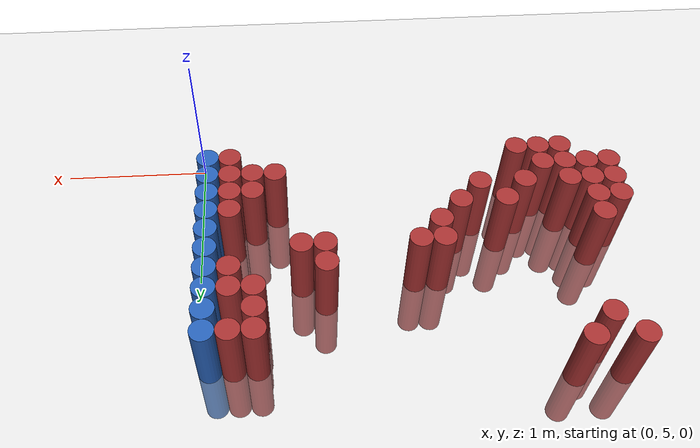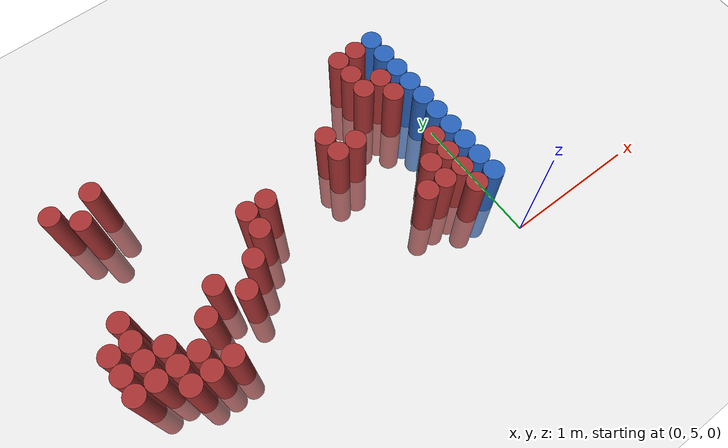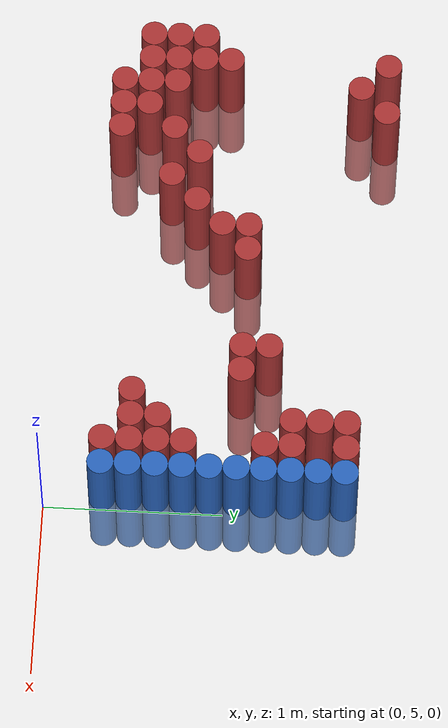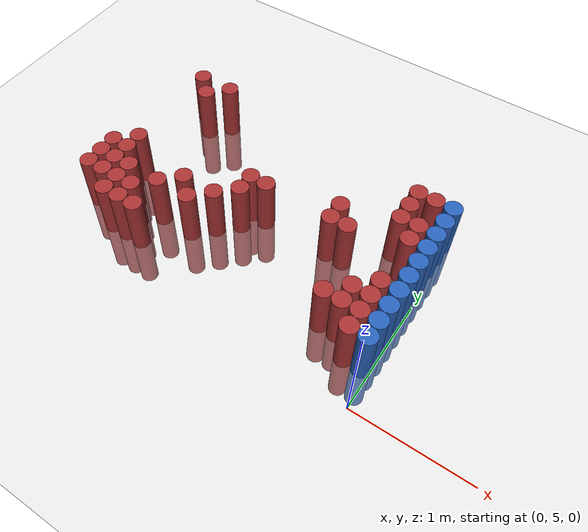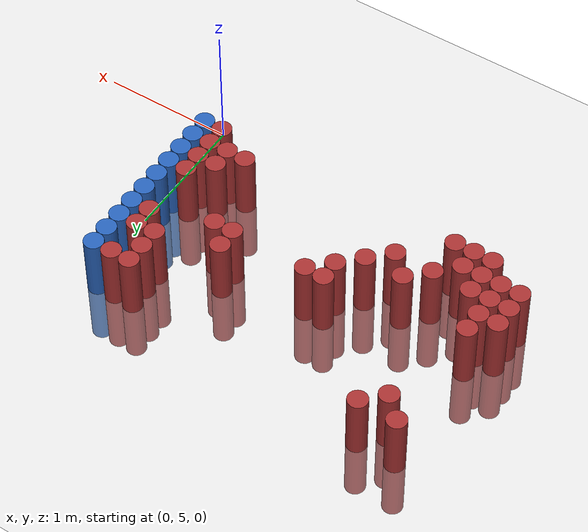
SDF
<sdf version="1.6">
 <world name="default">
  <model name="ground_plane">
   <static>1</static>
   <link name="link">
    <collision name="collision">
     <geometry><plane><normal>0 0 1</normal><size>100 100</size></plane></geometry>
     <surface><friction><ode><mu>100</mu><mu2>50</mu2></ode></friction></surface>
    </collision>
    <visual name="visual">
     <cast_shadows>0</cast_shadows>
     <geometry><plane><normal>0 0 1</normal><size>100 100</size></plane></geometry>
     <material>
      <script><uri>file://media/materials/scripts/gazebo.material</uri><name>Gazebo/Grey</name></script>
     </material>
    </visual>
   </link>
  </model>
  <model name="unit_cylinder_148">
   <static>1</static>
   <pose>-2.775000 5.475000 0.000000 0.000000 0.000000 0.000000</pose>
   <link name="link">
    <inertial>
     <mass>1</mass>
     <inertia><ixx>0.145833</ixx><ixy>0</ixy><ixz>0</ixz><iyy>0.145833</iyy><iyz>0</iyz><izz>0.125</izz></inertia>
    </inertial>
    <collision name="collision">
     <geometry><cylinder><radius>0.075000</radius><length>1</length></cylinder></geometry>
    </collision>
    <visual name="visual">
     <geometry><cylinder><radius>0.075000</radius><length>1</length></cylinder></geometry>
     <material>
      <ambient>0.648000 0.192000 0.192000 1</ambient>
      <diffuse>0.648000 0.192000 0.192000 1</diffuse>
     </material>
     <material>
      <script><name>Gazebo/Grey</name><uri>file://media/materials/scripts/gazebo.material</uri></script>
     </material>
    </visual>
   </link>
  </model>
  <model name="unit_cylinder_149">
   <static>1</static>
   <pose>-2.775000 5.625000 0.000000 0.000000 0.000000 0.000000</pose>
   <link name="link">
    <inertial>
     <mass>1</mass>
     <inertia><ixx>0.145833</ixx><ixy>0</ixy><ixz>0</ixz><iyy>0.145833</iyy><iyz>0</iyz><izz>0.125</izz></inertia>
    </inertial>
    <collision name="collision">
     <geometry><cylinder><radius>0.075000</radius><length>1</length></cylinder></geometry>
    </collision>
    <visual name="visual">
     <geometry><cylinder><radius>0.075000</radius><length>1</length></cylinder></geometry>
     <material>
      <ambient>0.648000 0.192000 0.192000 1</ambient>
      <diffuse>0.648000 0.192000 0.192000 1</diffuse>
     </material>
     <material>
      <script><name>Gazebo/Grey</name><uri>file://media/materials/scripts/gazebo.material</uri></script>
     </material>
    </visual>
   </link>
  </model>
  <model name="unit_cylinder_150">
   <static>1</static>
   <pose>-2.775000 5.775000 0.000000 0.000000 0.000000 0.000000</pose>
   <link name="link">
    <inertial>
     <mass>1</mass>
     <inertia><ixx>0.145833</ixx><ixy>0</ixy><ixz>0</ixz><iyy>0.145833</iyy><iyz>0</iyz><izz>0.125</izz></inertia>
    </inertial>
    <collision name="collision">
     <geometry><cylinder><radius>0.075000</radius><length>1</length></cylinder></geometry>
    </collision>
    <visual name="visual">
     <geometry><cylinder><radius>0.075000</radius><length>1</length></cylinder></geometry>
     <material>
      <ambient>0.648000 0.192000 0.192000 1</ambient>
      <diffuse>0.648000 0.192000 0.192000 1</diffuse>
     </material>
     <material>
      <script><name>Gazebo/Grey</name><uri>file://media/materials/scripts/gazebo.material</uri></script>
     </material>
    </visual>
   </link>
  </model>
  <model name="unit_cylinder_151">
   <static>1</static>
   <pose>-2.625000 5.475000 0.000000 0.000000 0.000000 0.000000</pose>
   <link name="link">
    <inertial>
     <mass>1</mass>
     <inertia><ixx>0.145833</ixx><ixy>0</ixy><ixz>0</ixz><iyy>0.145833</iyy><iyz>0</iyz><izz>0.125</izz></inertia>
    </inertial>
    <collision name="collision">
     <geometry><cylinder><radius>0.075000</radius><length>1</length></cylinder></geometry>
    </collision>
    <visual name="visual">
     <geometry><cylinder><radius>0.075000</radius><length>1</length></cylinder></geometry>
     <material>
      <ambient>0.648000 0.192000 0.192000 1</ambient>
      <diffuse>0.648000 0.192000 0.192000 1</diffuse>
     </material>
     <material>
      <script><name>Gazebo/Grey</name><uri>file://media/materials/scripts/gazebo.material</uri></script>
     </material>
    </visual>
   </link>
  </model>
  <model name="unit_cylinder_152">
   <static>1</static>
   <pose>-2.625000 5.625000 0.000000 0.000000 0.000000 0.000000</pose>
   <link name="link">
    <inertial>
     <mass>1</mass>
     <inertia><ixx>0.145833</ixx><ixy>0</ixy><ixz>0</ixz><iyy>0.145833</iyy><iyz>0</iyz><izz>0.125</izz></inertia>
    </inertial>
    <collision name="collision">
     <geometry><cylinder><radius>0.075000</radius><length>1</length></cylinder></geometry>
    </collision>
    <visual name="visual">
     <geometry><cylinder><radius>0.075000</radius><length>1</length></cylinder></geometry>
     <material>
      <ambient>0.648000 0.192000 0.192000 1</ambient>
      <diffuse>0.648000 0.192000 0.192000 1</diffuse>
     </material>
     <material>
      <script><name>Gazebo/Grey</name><uri>file://media/materials/scripts/gazebo.material</uri></script>
     </material>
    </visual>
   </link>
  </model>
  <model name="unit_cylinder_153">
   <static>1</static>
   <pose>-2.625000 5.775000 0.000000 0.000000 0.000000 0.000000</pose>
   <link name="link">
    <inertial>
     <mass>1</mass>
     <inertia><ixx>0.145833</ixx><ixy>0</ixy><ixz>0</ixz><iyy>0.145833</iyy><iyz>0</iyz><izz>0.125</izz></inertia>
    </inertial>
    <collision name="collision">
     <geometry><cylinder><radius>0.075000</radius><length>1</length></cylinder></geometry>
    </collision>
    <visual name="visual">
     <geometry><cylinder><radius>0.075000</radius><length>1</length></cylinder></geometry>
     <material>
      <ambient>0.648000 0.192000 0.192000 1</ambient>
      <diffuse>0.648000 0.192000 0.192000 1</diffuse>
     </material>
     <material>
      <script><name>Gazebo/Grey</name><uri>file://media/materials/scripts/gazebo.material</uri></script>
     </material>
    </visual>
   </link>
  </model>
  <model name="unit_cylinder_154">
   <static>1</static>
   <pose>-2.625000 5.925000 0.000000 0.000000 0.000000 0.000000</pose>
   <link name="link">
    <inertial>
     <mass>1</mass>
     <inertia><ixx>0.145833</ixx><ixy>0</ixy><ixz>0</ixz><iyy>0.145833</iyy><iyz>0</iyz><izz>0.125</izz></inertia>
    </inertial>
    <collision name="collision">
     <geometry><cylinder><radius>0.075000</radius><length>1</length></cylinder></geometry>
    </collision>
    <visual name="visual">
     <geometry><cylinder><radius>0.075000</radius><length>1</length></cylinder></geometry>
     <material>
      <ambient>0.648000 0.192000 0.192000 1</ambient>
      <diffuse>0.648000 0.192000 0.192000 1</diffuse>
     </material>
     <material>
      <script><name>Gazebo/Grey</name><uri>file://media/materials/scripts/gazebo.material</uri></script>
     </material>
    </visual>
   </link>
  </model>
  <model name="unit_cylinder_155">
   <static>1</static>
   <pose>-2.625000 6.825000 0.000000 0.000000 0.000000 0.000000</pose>
   <link name="link">
    <inertial>
     <mass>1</mass>
     <inertia><ixx>0.145833</ixx><ixy>0</ixy><ixz>0</ixz><iyy>0.145833</iyy><iyz>0</iyz><izz>0.125</izz></inertia>
    </inertial>
    <collision name="collision">
     <geometry><cylinder><radius>0.075000</radius><length>1</length></cylinder></geometry>
    </collision>
    <visual name="visual">
     <geometry><cylinder><radius>0.075000</radius><length>1</length></cylinder></geometry>
     <material>
      <ambient>0.648000 0.192000 0.192000 1</ambient>
      <diffuse>0.648000 0.192000 0.192000 1</diffuse>
     </material>
     <material>
      <script><name>Gazebo/Grey</name><uri>file://media/materials/scripts/gazebo.material</uri></script>
     </material>
    </visual>
   </link>
  </model>
  <model name="unit_cylinder_156">
   <static>1</static>
   <pose>-2.475000 5.325000 0.000000 0.000000 0.000000 0.000000</pose>
   <link name="link">
    <inertial>
     <mass>1</mass>
     <inertia><ixx>0.145833</ixx><ixy>0</ixy><ixz>0</ixz><iyy>0.145833</iyy><iyz>0</iyz><izz>0.125</izz></inertia>
    </inertial>
    <collision name="collision">
     <geometry><cylinder><radius>0.075000</radius><length>1</length></cylinder></geometry>
    </collision>
    <visual name="visual">
     <geometry><cylinder><radius>0.075000</radius><length>1</length></cylinder></geometry>
     <material>
      <ambient>0.648000 0.192000 0.192000 1</ambient>
      <diffuse>0.648000 0.192000 0.192000 1</diffuse>
     </material>
     <material>
      <script><name>Gazebo/Grey</name><uri>file://media/materials/scripts/gazebo.material</uri></script>
     </material>
    </visual>
   </link>
  </model>
  <model name="unit_cylinder_157">
   <static>1</static>
   <pose>-2.475000 5.475000 0.000000 0.000000 0.000000 0.000000</pose>
   <link name="link">
    <inertial>
     <mass>1</mass>
     <inertia><ixx>0.145833</ixx><ixy>0</ixy><ixz>0</ixz><iyy>0.145833</iyy><iyz>0</iyz><izz>0.125</izz></inertia>
    </inertial>
    <collision name="collision">
     <geometry><cylinder><radius>0.075000</radius><length>1</length></cylinder></geometry>
    </collision>
    <visual name="visual">
     <geometry><cylinder><radius>0.075000</radius><length>1</length></cylinder></geometry>
     <material>
      <ambient>0.648000 0.192000 0.192000 1</ambient>
      <diffuse>0.648000 0.192000 0.192000 1</diffuse>
     </material>
     <material>
      <script><name>Gazebo/Grey</name><uri>file://media/materials/scripts/gazebo.material</uri></script>
     </material>
    </visual>
   </link>
  </model>
  <model name="unit_cylinder_158">
   <static>1</static>
   <pose>-2.475000 5.625000 0.000000 0.000000 0.000000 0.000000</pose>
   <link name="link">
    <inertial>
     <mass>1</mass>
     <inertia><ixx>0.145833</ixx><ixy>0</ixy><ixz>0</ixz><iyy>0.145833</iyy><iyz>0</iyz><izz>0.125</izz></inertia>
    </inertial>
    <collision name="collision">
     <geometry><cylinder><radius>0.075000</radius><length>1</length></cylinder></geometry>
    </collision>
    <visual name="visual">
     <geometry><cylinder><radius>0.075000</radius><length>1</length></cylinder></geometry>
     <material>
      <ambient>0.648000 0.192000 0.192000 1</ambient>
      <diffuse>0.648000 0.192000 0.192000 1</diffuse>
     </material>
     <material>
      <script><name>Gazebo/Grey</name><uri>file://media/materials/scripts/gazebo.material</uri></script>
     </material>
    </visual>
   </link>
  </model>
  <model name="unit_cylinder_159">
   <static>1</static>
   <pose>-2.475000 6.675000 0.000000 0.000000 0.000000 0.000000</pose>
   <link name="link">
    <inertial>
     <mass>1</mass>
     <inertia><ixx>0.145833</ixx><ixy>0</ixy><ixz>0</ixz><iyy>0.145833</iyy><iyz>0</iyz><izz>0.125</izz></inertia>
    </inertial>
    <collision name="collision">
     <geometry><cylinder><radius>0.075000</radius><length>1</length></cylinder></geometry>
    </collision>
    <visual name="visual">
     <geometry><cylinder><radius>0.075000</radius><length>1</length></cylinder></geometry>
     <material>
      <ambient>0.648000 0.192000 0.192000 1</ambient>
      <diffuse>0.648000 0.192000 0.192000 1</diffuse>
     </material>
     <material>
      <script><name>Gazebo/Grey</name><uri>file://media/materials/scripts/gazebo.material</uri></script>
     </material>
    </visual>
   </link>
  </model>
  <model name="unit_cylinder_162">
   <static>1</static>
   <pose>-2.325000 5.325000 0.000000 0.000000 0.000000 0.000000</pose>
   <link name="link">
    <inertial>
     <mass>1</mass>
     <inertia><ixx>0.145833</ixx><ixy>0</ixy><ixz>0</ixz><iyy>0.145833</iyy><iyz>0</iyz><izz>0.125</izz></inertia>
    </inertial>
    <collision name="collision">
     <geometry><cylinder><radius>0.075000</radius><length>1</length></cylinder></geometry>
    </collision>
    <visual name="visual">
     <geometry><cylinder><radius>0.075000</radius><length>1</length></cylinder></geometry>
     <material>
      <ambient>0.648000 0.192000 0.192000 1</ambient>
      <diffuse>0.648000 0.192000 0.192000 1</diffuse>
     </material>
     <material>
      <script><name>Gazebo/Grey</name><uri>file://media/materials/scripts/gazebo.material</uri></script>
     </material>
    </visual>
   </link>
  </model>
  <model name="unit_cylinder_163">
   <static>1</static>
   <pose>-2.325000 5.475000 0.000000 0.000000 0.000000 0.000000</pose>
   <link name="link">
    <inertial>
     <mass>1</mass>
     <inertia><ixx>0.145833</ixx><ixy>0</ixy><ixz>0</ixz><iyy>0.145833</iyy><iyz>0</iyz><izz>0.125</izz></inertia>
    </inertial>
    <collision name="collision">
     <geometry><cylinder><radius>0.075000</radius><length>1</length></cylinder></geometry>
    </collision>
    <visual name="visual">
     <geometry><cylinder><radius>0.075000</radius><length>1</length></cylinder></geometry>
     <material>
      <ambient>0.648000 0.192000 0.192000 1</ambient>
      <diffuse>0.648000 0.192000 0.192000 1</diffuse>
     </material>
     <material>
      <script><name>Gazebo/Grey</name><uri>file://media/materials/scripts/gazebo.material</uri></script>
     </material>
    </visual>
   </link>
  </model>
  <model name="unit_cylinder_164">
   <static>1</static>
   <pose>-2.325000 6.825000 0.000000 0.000000 0.000000 0.000000</pose>
   <link name="link">
    <inertial>
     <mass>1</mass>
     <inertia><ixx>0.145833</ixx><ixy>0</ixy><ixz>0</ixz><iyy>0.145833</iyy><iyz>0</iyz><izz>0.125</izz></inertia>
    </inertial>
    <collision name="collision">
     <geometry><cylinder><radius>0.075000</radius><length>1</length></cylinder></geometry>
    </collision>
    <visual name="visual">
     <geometry><cylinder><radius>0.075000</radius><length>1</length></cylinder></geometry>
     <material>
      <ambient>0.648000 0.192000 0.192000 1</ambient>
      <diffuse>0.648000 0.192000 0.192000 1</diffuse>
     </material>
     <material>
      <script><name>Gazebo/Grey</name><uri>file://media/materials/scripts/gazebo.material</uri></script>
     </material>
    </visual>
   </link>
  </model>
  <model name="unit_cylinder_168">
   <static>1</static>
   <pose>-2.175000 5.325000 0.000000 0.000000 0.000000 0.000000</pose>
   <link name="link">
    <inertial>
     <mass>1</mass>
     <inertia><ixx>0.145833</ixx><ixy>0</ixy><ixz>0</ixz><iyy>0.145833</iyy><iyz>0</iyz><izz>0.125</izz></inertia>
    </inertial>
    <collision name="collision">
     <geometry><cylinder><radius>0.075000</radius><length>1</length></cylinder></geometry>
    </collision>
    <visual name="visual">
     <geometry><cylinder><radius>0.075000</radius><length>1</length></cylinder></geometry>
     <material>
      <ambient>0.648000 0.192000 0.192000 1</ambient>
      <diffuse>0.648000 0.192000 0.192000 1</diffuse>
     </material>
     <material>
      <script><name>Gazebo/Grey</name><uri>file://media/materials/scripts/gazebo.material</uri></script>
     </material>
    </visual>
   </link>
  </model>
  <model name="unit_cylinder_169">
   <static>1</static>
   <pose>-2.175000 5.625000 0.000000 0.000000 0.000000 0.000000</pose>
   <link name="link">
    <inertial>
     <mass>1</mass>
     <inertia><ixx>0.145833</ixx><ixy>0</ixy><ixz>0</ixz><iyy>0.145833</iyy><iyz>0</iyz><izz>0.125</izz></inertia>
    </inertial>
    <collision name="collision">
     <geometry><cylinder><radius>0.075000</radius><length>1</length></cylinder></geometry>
    </collision>
    <visual name="visual">
     <geometry><cylinder><radius>0.075000</radius><length>1</length></cylinder></geometry>
     <material>
      <ambient>0.648000 0.192000 0.192000 1</ambient>
      <diffuse>0.648000 0.192000 0.192000 1</diffuse>
     </material>
     <material>
      <script><name>Gazebo/Grey</name><uri>file://media/materials/scripts/gazebo.material</uri></script>
     </material>
    </visual>
   </link>
  </model>
  <model name="unit_cylinder_174">
   <static>1</static>
   <pose>-2.025000 5.775000 0.000000 0.000000 0.000000 0.000000</pose>
   <link name="link">
    <inertial>
     <mass>1</mass>
     <inertia><ixx>0.145833</ixx><ixy>0</ixy><ixz>0</ixz><iyy>0.145833</iyy><iyz>0</iyz><izz>0.125</izz></inertia>
    </inertial>
    <collision name="collision">
     <geometry><cylinder><radius>0.075000</radius><length>1</length></cylinder></geometry>
    </collision>
    <visual name="visual">
     <geometry><cylinder><radius>0.075000</radius><length>1</length></cylinder></geometry>
     <material>
      <ambient>0.648000 0.192000 0.192000 1</ambient>
      <diffuse>0.648000 0.192000 0.192000 1</diffuse>
     </material>
     <material>
      <script><name>Gazebo/Grey</name><uri>file://media/materials/scripts/gazebo.material</uri></script>
     </material>
    </visual>
   </link>
  </model>
  <model name="unit_cylinder_178">
   <static>1</static>
   <pose>-1.875000 5.625000 0.000000 0.000000 0.000000 0.000000</pose>
   <link name="link">
    <inertial>
     <mass>1</mass>
     <inertia><ixx>0.145833</ixx><ixy>0</ixy><ixz>0</ixz><iyy>0.145833</iyy><iyz>0</iyz><izz>0.125</izz></inertia>
    </inertial>
    <collision name="collision">
     <geometry><cylinder><radius>0.075000</radius><length>1</length></cylinder></geometry>
    </collision>
    <visual name="visual">
     <geometry><cylinder><radius>0.075000</radius><length>1</length></cylinder></geometry>
     <material>
      <ambient>0.648000 0.192000 0.192000 1</ambient>
      <diffuse>0.648000 0.192000 0.192000 1</diffuse>
     </material>
     <material>
      <script><name>Gazebo/Grey</name><uri>file://media/materials/scripts/gazebo.material</uri></script>
     </material>
    </visual>
   </link>
  </model>
  <model name="unit_cylinder_180">
   <static>1</static>
   <pose>-1.725000 5.775000 0.000000 0.000000 0.000000 0.000000</pose>
   <link name="link">
    <inertial>
     <mass>1</mass>
     <inertia><ixx>0.145833</ixx><ixy>0</ixy><ixz>0</ixz><iyy>0.145833</iyy><iyz>0</iyz><izz>0.125</izz></inertia>
    </inertial>
    <collision name="collision">
     <geometry><cylinder><radius>0.075000</radius><length>1</length></cylinder></geometry>
    </collision>
    <visual name="visual">
     <geometry><cylinder><radius>0.075000</radius><length>1</length></cylinder></geometry>
     <material>
      <ambient>0.648000 0.192000 0.192000 1</ambient>
      <diffuse>0.648000 0.192000 0.192000 1</diffuse>
     </material>
     <material>
      <script><name>Gazebo/Grey</name><uri>file://media/materials/scripts/gazebo.material</uri></script>
     </material>
    </visual>
   </link>
  </model>
  <model name="unit_cylinder_182">
   <static>1</static>
   <pose>-1.575000 5.925000 0.000000 0.000000 0.000000 0.000000</pose>
   <link name="link">
    <inertial>
     <mass>1</mass>
     <inertia><ixx>0.145833</ixx><ixy>0</ixy><ixz>0</ixz><iyy>0.145833</iyy><iyz>0</iyz><izz>0.125</izz></inertia>
    </inertial>
    <collision name="collision">
     <geometry><cylinder><radius>0.075000</radius><length>1</length></cylinder></geometry>
    </collision>
    <visual name="visual">
     <geometry><cylinder><radius>0.075000</radius><length>1</length></cylinder></geometry>
     <material>
      <ambient>0.648000 0.192000 0.192000 1</ambient>
      <diffuse>0.648000 0.192000 0.192000 1</diffuse>
     </material>
     <material>
      <script><name>Gazebo/Grey</name><uri>file://media/materials/scripts/gazebo.material</uri></script>
     </material>
    </visual>
   </link>
  </model>
  <model name="unit_cylinder_183">
   <static>1</static>
   <pose>-1.575000 6.075000 0.000000 0.000000 0.000000 0.000000</pose>
   <link name="link">
    <inertial>
     <mass>1</mass>
     <inertia><ixx>0.145833</ixx><ixy>0</ixy><ixz>0</ixz><iyy>0.145833</iyy><iyz>0</iyz><izz>0.125</izz></inertia>
    </inertial>
    <collision name="collision">
     <geometry><cylinder><radius>0.075000</radius><length>1</length></cylinder></geometry>
    </collision>
    <visual name="visual">
     <geometry><cylinder><radius>0.075000</radius><length>1</length></cylinder></geometry>
     <material>
      <ambient>0.648000 0.192000 0.192000 1</ambient>
      <diffuse>0.648000 0.192000 0.192000 1</diffuse>
     </material>
     <material>
      <script><name>Gazebo/Grey</name><uri>file://media/materials/scripts/gazebo.material</uri></script>
     </material>
    </visual>
   </link>
  </model>
  <model name="unit_cylinder_186">
   <static>1</static>
   <pose>-1.425000 6.075000 0.000000 0.000000 0.000000 0.000000</pose>
   <link name="link">
    <inertial>
     <mass>1</mass>
     <inertia><ixx>0.145833</ixx><ixy>0</ixy><ixz>0</ixz><iyy>0.145833</iyy><iyz>0</iyz><izz>0.125</izz></inertia>
    </inertial>
    <collision name="collision">
     <geometry><cylinder><radius>0.075000</radius><length>1</length></cylinder></geometry>
    </collision>
    <visual name="visual">
     <geometry><cylinder><radius>0.075000</radius><length>1</length></cylinder></geometry>
     <material>
      <ambient>0.648000 0.192000 0.192000 1</ambient>
      <diffuse>0.648000 0.192000 0.192000 1</diffuse>
     </material>
     <material>
      <script><name>Gazebo/Grey</name><uri>file://media/materials/scripts/gazebo.material</uri></script>
     </material>
    </visual>
   </link>
  </model>
  <model name="unit_cylinder_190">
   <static>1</static>
   <pose>-0.825000 6.075000 0.000000 0.000000 0.000000 0.000000</pose>
   <link name="link">
    <inertial>
     <mass>1</mass>
     <inertia><ixx>0.145833</ixx><ixy>0</ixy><ixz>0</ixz><iyy>0.145833</iyy><iyz>0</iyz><izz>0.125</izz></inertia>
    </inertial>
    <collision name="collision">
     <geometry><cylinder><radius>0.075000</radius><length>1</length></cylinder></geometry>
    </collision>
    <visual name="visual">
     <geometry><cylinder><radius>0.075000</radius><length>1</length></cylinder></geometry>
     <material>
      <ambient>0.648000 0.192000 0.192000 1</ambient>
      <diffuse>0.648000 0.192000 0.192000 1</diffuse>
     </material>
     <material>
      <script><name>Gazebo/Grey</name><uri>file://media/materials/scripts/gazebo.material</uri></script>
     </material>
    </visual>
   </link>
  </model>
  <model name="unit_cylinder_191">
   <static>1</static>
   <pose>-0.825000 6.225000 0.000000 0.000000 0.000000 0.000000</pose>
   <link name="link">
    <inertial>
     <mass>1</mass>
     <inertia><ixx>0.145833</ixx><ixy>0</ixy><ixz>0</ixz><iyy>0.145833</iyy><iyz>0</iyz><izz>0.125</izz></inertia>
    </inertial>
    <collision name="collision">
     <geometry><cylinder><radius>0.075000</radius><length>1</length></cylinder></geometry>
    </collision>
    <visual name="visual">
     <geometry><cylinder><radius>0.075000</radius><length>1</length></cylinder></geometry>
     <material>
      <ambient>0.648000 0.192000 0.192000 1</ambient>
      <diffuse>0.648000 0.192000 0.192000 1</diffuse>
     </material>
     <material>
      <script><name>Gazebo/Grey</name><uri>file://media/materials/scripts/gazebo.material</uri></script>
     </material>
    </visual>
   </link>
  </model>
  <model name="unit_cylinder_193">
   <static>1</static>
   <pose>-0.675000 6.075000 0.000000 0.000000 0.000000 0.000000</pose>
   <link name="link">
    <inertial>
     <mass>1</mass>
     <inertia><ixx>0.145833</ixx><ixy>0</ixy><ixz>0</ixz><iyy>0.145833</iyy><iyz>0</iyz><izz>0.125</izz></inertia>
    </inertial>
    <collision name="collision">
     <geometry><cylinder><radius>0.075000</radius><length>1</length></cylinder></geometry>
    </collision>
    <visual name="visual">
     <geometry><cylinder><radius>0.075000</radius><length>1</length></cylinder></geometry>
     <material>
      <ambient>0.648000 0.192000 0.192000 1</ambient>
      <diffuse>0.648000 0.192000 0.192000 1</diffuse>
     </material>
     <material>
      <script><name>Gazebo/Grey</name><uri>file://media/materials/scripts/gazebo.material</uri></script>
     </material>
    </visual>
   </link>
  </model>
  <model name="unit_cylinder_196">
   <static>1</static>
   <pose>-0.525000 5.475000 0.000000 0.000000 0.000000 0.000000</pose>
   <link name="link">
    <inertial>
     <mass>1</mass>
     <inertia><ixx>0.145833</ixx><ixy>0</ixy><ixz>0</ixz><iyy>0.145833</iyy><iyz>0</iyz><izz>0.125</izz></inertia>
    </inertial>
    <collision name="collision">
     <geometry><cylinder><radius>0.075000</radius><length>1</length></cylinder></geometry>
    </collision>
    <visual name="visual">
     <geometry><cylinder><radius>0.075000</radius><length>1</length></cylinder></geometry>
     <material>
      <ambient>0.648000 0.192000 0.192000 1</ambient>
      <diffuse>0.648000 0.192000 0.192000 1</diffuse>
     </material>
     <material>
      <script><name>Gazebo/Grey</name><uri>file://media/materials/scripts/gazebo.material</uri></script>
     </material>
    </visual>
   </link>
  </model>
  <model name="unit_cylinder_197">
   <static>1</static>
   <pose>-0.375000 5.475000 0.000000 0.000000 0.000000 0.000000</pose>
   <link name="link">
    <inertial>
     <mass>1</mass>
     <inertia><ixx>0.145833</ixx><ixy>0</ixy><ixz>0</ixz><iyy>0.145833</iyy><iyz>0</iyz><izz>0.125</izz></inertia>
    </inertial>
    <collision name="collision">
     <geometry><cylinder><radius>0.075000</radius><length>1</length></cylinder></geometry>
    </collision>
    <visual name="visual">
     <geometry><cylinder><radius>0.075000</radius><length>1</length></cylinder></geometry>
     <material>
      <ambient>0.648000 0.192000 0.192000 1</ambient>
      <diffuse>0.648000 0.192000 0.192000 1</diffuse>
     </material>
     <material>
      <script><name>Gazebo/Grey</name><uri>file://media/materials/scripts/gazebo.material</uri></script>
     </material>
    </visual>
   </link>
  </model>
  <model name="unit_cylinder_198">
   <static>1</static>
   <pose>-0.375000 5.625000 0.000000 0.000000 0.000000 0.000000</pose>
   <link name="link">
    <inertial>
     <mass>1</mass>
     <inertia><ixx>0.145833</ixx><ixy>0</ixy><ixz>0</ixz><iyy>0.145833</iyy><iyz>0</iyz><izz>0.125</izz></inertia>
    </inertial>
    <collision name="collision">
     <geometry><cylinder><radius>0.075000</radius><length>1</length></cylinder></geometry>
    </collision>
    <visual name="visual">
     <geometry><cylinder><radius>0.075000</radius><length>1</length></cylinder></geometry>
     <material>
      <ambient>0.648000 0.192000 0.192000 1</ambient>
      <diffuse>0.648000 0.192000 0.192000 1</diffuse>
     </material>
     <material>
      <script><name>Gazebo/Grey</name><uri>file://media/materials/scripts/gazebo.material</uri></script>
     </material>
    </visual>
   </link>
  </model>
  <model name="unit_cylinder_199">
   <static>1</static>
   <pose>-0.375000 6.375000 0.000000 0.000000 0.000000 0.000000</pose>
   <link name="link">
    <inertial>
     <mass>1</mass>
     <inertia><ixx>0.145833</ixx><ixy>0</ixy><ixz>0</ixz><iyy>0.145833</iyy><iyz>0</iyz><izz>0.125</izz></inertia>
    </inertial>
    <collision name="collision">
     <geometry><cylinder><radius>0.075000</radius><length>1</length></cylinder></geometry>
    </collision>
    <visual name="visual">
     <geometry><cylinder><radius>0.075000</radius><length>1</length></cylinder></geometry>
     <material>
      <ambient>0.648000 0.192000 0.192000 1</ambient>
      <diffuse>0.648000 0.192000 0.192000 1</diffuse>
     </material>
     <material>
      <script><name>Gazebo/Grey</name><uri>file://media/materials/scripts/gazebo.material</uri></script>
     </material>
    </visual>
   </link>
  </model>
  <model name="unit_cylinder_200">
   <static>1</static>
   <pose>-0.375000 6.525000 0.000000 0.000000 0.000000 0.000000</pose>
   <link name="link">
    <inertial>
     <mass>1</mass>
     <inertia><ixx>0.145833</ixx><ixy>0</ixy><ixz>0</ixz><iyy>0.145833</iyy><iyz>0</iyz><izz>0.125</izz></inertia>
    </inertial>
    <collision name="collision">
     <geometry><cylinder><radius>0.075000</radius><length>1</length></cylinder></geometry>
    </collision>
    <visual name="visual">
     <geometry><cylinder><radius>0.075000</radius><length>1</length></cylinder></geometry>
     <material>
      <ambient>0.648000 0.192000 0.192000 1</ambient>
      <diffuse>0.648000 0.192000 0.192000 1</diffuse>
     </material>
     <material>
      <script><name>Gazebo/Grey</name><uri>file://media/materials/scripts/gazebo.material</uri></script>
     </material>
    </visual>
   </link>
  </model>
  <model name="unit_cylinder_201">
   <static>1</static>
   <pose>-0.375000 6.675000 0.000000 0.000000 0.000000 0.000000</pose>
   <link name="link">
    <inertial>
     <mass>1</mass>
     <inertia><ixx>0.145833</ixx><ixy>0</ixy><ixz>0</ixz><iyy>0.145833</iyy><iyz>0</iyz><izz>0.125</izz></inertia>
    </inertial>
    <collision name="collision">
     <geometry><cylinder><radius>0.075000</radius><length>1</length></cylinder></geometry>
    </collision>
    <visual name="visual">
     <geometry><cylinder><radius>0.075000</radius><length>1</length></cylinder></geometry>
     <material>
      <ambient>0.648000 0.192000 0.192000 1</ambient>
      <diffuse>0.648000 0.192000 0.192000 1</diffuse>
     </material>
     <material>
      <script><name>Gazebo/Grey</name><uri>file://media/materials/scripts/gazebo.material</uri></script>
     </material>
    </visual>
   </link>
  </model>
  <model name="unit_cylinder_202">
   <static>1</static>
   <pose>-0.225000 5.325000 0.000000 0.000000 0.000000 0.000000</pose>
   <link name="link">
    <inertial>
     <mass>1</mass>
     <inertia><ixx>0.145833</ixx><ixy>0</ixy><ixz>0</ixz><iyy>0.145833</iyy><iyz>0</iyz><izz>0.125</izz></inertia>
    </inertial>
    <collision name="collision">
     <geometry><cylinder><radius>0.075000</radius><length>1</length></cylinder></geometry>
    </collision>
    <visual name="visual">
     <geometry><cylinder><radius>0.075000</radius><length>1</length></cylinder></geometry>
     <material>
      <ambient>0.648000 0.192000 0.192000 1</ambient>
      <diffuse>0.648000 0.192000 0.192000 1</diffuse>
     </material>
     <material>
      <script><name>Gazebo/Grey</name><uri>file://media/materials/scripts/gazebo.material</uri></script>
     </material>
    </visual>
   </link>
  </model>
  <model name="unit_cylinder_203">
   <static>1</static>
   <pose>-0.225000 5.475000 0.000000 0.000000 0.000000 0.000000</pose>
   <link name="link">
    <inertial>
     <mass>1</mass>
     <inertia><ixx>0.145833</ixx><ixy>0</ixy><ixz>0</ixz><iyy>0.145833</iyy><iyz>0</iyz><izz>0.125</izz></inertia>
    </inertial>
    <collision name="collision">
     <geometry><cylinder><radius>0.075000</radius><length>1</length></cylinder></geometry>
    </collision>
    <visual name="visual">
     <geometry><cylinder><radius>0.075000</radius><length>1</length></cylinder></geometry>
     <material>
      <ambient>0.648000 0.192000 0.192000 1</ambient>
      <diffuse>0.648000 0.192000 0.192000 1</diffuse>
     </material>
     <material>
      <script><name>Gazebo/Grey</name><uri>file://media/materials/scripts/gazebo.material</uri></script>
     </material>
    </visual>
   </link>
  </model>
  <model name="unit_cylinder_204">
   <static>1</static>
   <pose>-0.225000 5.625000 0.000000 0.000000 0.000000 0.000000</pose>
   <link name="link">
    <inertial>
     <mass>1</mass>
     <inertia><ixx>0.145833</ixx><ixy>0</ixy><ixz>0</ixz><iyy>0.145833</iyy><iyz>0</iyz><izz>0.125</izz></inertia>
    </inertial>
    <collision name="collision">
     <geometry><cylinder><radius>0.075000</radius><length>1</length></cylinder></geometry>
    </collision>
    <visual name="visual">
     <geometry><cylinder><radius>0.075000</radius><length>1</length></cylinder></geometry>
     <material>
      <ambient>0.648000 0.192000 0.192000 1</ambient>
      <diffuse>0.648000 0.192000 0.192000 1</diffuse>
     </material>
     <material>
      <script><name>Gazebo/Grey</name><uri>file://media/materials/scripts/gazebo.material</uri></script>
     </material>
    </visual>
   </link>
  </model>
  <model name="unit_cylinder_205">
   <static>1</static>
   <pose>-0.225000 5.775000 0.000000 0.000000 0.000000 0.000000</pose>
   <link name="link">
    <inertial>
     <mass>1</mass>
     <inertia><ixx>0.145833</ixx><ixy>0</ixy><ixz>0</ixz><iyy>0.145833</iyy><iyz>0</iyz><izz>0.125</izz></inertia>
    </inertial>
    <collision name="collision">
     <geometry><cylinder><radius>0.075000</radius><length>1</length></cylinder></geometry>
    </collision>
    <visual name="visual">
     <geometry><cylinder><radius>0.075000</radius><length>1</length></cylinder></geometry>
     <material>
      <ambient>0.648000 0.192000 0.192000 1</ambient>
      <diffuse>0.648000 0.192000 0.192000 1</diffuse>
     </material>
     <material>
      <script><name>Gazebo/Grey</name><uri>file://media/materials/scripts/gazebo.material</uri></script>
     </material>
    </visual>
   </link>
  </model>
  <model name="unit_cylinder_206">
   <static>1</static>
   <pose>-0.225000 6.225000 0.000000 0.000000 0.000000 0.000000</pose>
   <link name="link">
    <inertial>
     <mass>1</mass>
     <inertia><ixx>0.145833</ixx><ixy>0</ixy><ixz>0</ixz><iyy>0.145833</iyy><iyz>0</iyz><izz>0.125</izz></inertia>
    </inertial>
    <collision name="collision">
     <geometry><cylinder><radius>0.075000</radius><length>1</length></cylinder></geometry>
    </collision>
    <visual name="visual">
     <geometry><cylinder><radius>0.075000</radius><length>1</length></cylinder></geometry>
     <material>
      <ambient>0.648000 0.192000 0.192000 1</ambient>
      <diffuse>0.648000 0.192000 0.192000 1</diffuse>
     </material>
     <material>
      <script><name>Gazebo/Grey</name><uri>file://media/materials/scripts/gazebo.material</uri></script>
     </material>
    </visual>
   </link>
  </model>
  <model name="unit_cylinder_207">
   <static>1</static>
   <pose>-0.225000 6.375000 0.000000 0.000000 0.000000 0.000000</pose>
   <link name="link">
    <inertial>
     <mass>1</mass>
     <inertia><ixx>0.145833</ixx><ixy>0</ixy><ixz>0</ixz><iyy>0.145833</iyy><iyz>0</iyz><izz>0.125</izz></inertia>
    </inertial>
    <collision name="collision">
     <geometry><cylinder><radius>0.075000</radius><length>1</length></cylinder></geometry>
    </collision>
    <visual name="visual">
     <geometry><cylinder><radius>0.075000</radius><length>1</length></cylinder></geometry>
     <material>
      <ambient>0.648000 0.192000 0.192000 1</ambient>
      <diffuse>0.648000 0.192000 0.192000 1</diffuse>
     </material>
     <material>
      <script><name>Gazebo/Grey</name><uri>file://media/materials/scripts/gazebo.material</uri></script>
     </material>
    </visual>
   </link>
  </model>
  <model name="unit_cylinder_208">
   <static>1</static>
   <pose>-0.225000 6.675000 0.000000 0.000000 0.000000 0.000000</pose>
   <link name="link">
    <inertial>
     <mass>1</mass>
     <inertia><ixx>0.145833</ixx><ixy>0</ixy><ixz>0</ixz><iyy>0.145833</iyy><iyz>0</iyz><izz>0.125</izz></inertia>
    </inertial>
    <collision name="collision">
     <geometry><cylinder><radius>0.075000</radius><length>1</length></cylinder></geometry>
    </collision>
    <visual name="visual">
     <geometry><cylinder><radius>0.075000</radius><length>1</length></cylinder></geometry>
     <material>
      <ambient>0.648000 0.192000 0.192000 1</ambient>
      <diffuse>0.648000 0.192000 0.192000 1</diffuse>
     </material>
     <material>
      <script><name>Gazebo/Grey</name><uri>file://media/materials/scripts/gazebo.material</uri></script>
     </material>
    </visual>
   </link>
  </model>
  <model name="unit_cylinder_218">
   <static>1</static>
   <pose>-0.075000 5.325000 0.000000 0.000000 0.000000 0.000000</pose>
   <link name="link">
    <inertial>
     <mass>1</mass>
     <inertia><ixx>0.145833</ixx><ixy>0</ixy><ixz>0</ixz><iyy>0.145833</iyy><iyz>0</iyz><izz>0.125</izz></inertia>
    </inertial>
    <collision name="collision">
     <geometry><cylinder><radius>0.075000</radius><length>1</length></cylinder></geometry>
    </collision>
    <visual name="visual">
     <geometry><cylinder><radius>0.075000</radius><length>1</length></cylinder></geometry>
     <material>
      <ambient>0.152000 0.379000 0.720000 1</ambient>
      <diffuse>0.152000 0.379000 0.720000 1</diffuse>
     </material>
     <material>
      <script><name>Gazebo/Grey</name><uri>file://media/materials/scripts/gazebo.material</uri></script>
     </material>
    </visual>
   </link>
  </model>
  <model name="unit_cylinder_219">
   <static>1</static>
   <pose>-0.075000 5.475000 0.000000 0.000000 0.000000 0.000000</pose>
   <link name="link">
    <inertial>
     <mass>1</mass>
     <inertia><ixx>0.145833</ixx><ixy>0</ixy><ixz>0</ixz><iyy>0.145833</iyy><iyz>0</iyz><izz>0.125</izz></inertia>
    </inertial>
    <collision name="collision">
     <geometry><cylinder><radius>0.075000</radius><length>1</length></cylinder></geometry>
    </collision>
    <visual name="visual">
     <geometry><cylinder><radius>0.075000</radius><length>1</length></cylinder></geometry>
     <material>
      <ambient>0.152000 0.379000 0.720000 1</ambient>
      <diffuse>0.152000 0.379000 0.720000 1</diffuse>
     </material>
     <material>
      <script><name>Gazebo/Grey</name><uri>file://media/materials/scripts/gazebo.material</uri></script>
     </material>
    </visual>
   </link>
  </model>
  <model name="unit_cylinder_220">
   <static>1</static>
   <pose>-0.075000 5.625000 0.000000 0.000000 0.000000 0.000000</pose>
   <link name="link">
    <inertial>
     <mass>1</mass>
     <inertia><ixx>0.145833</ixx><ixy>0</ixy><ixz>0</ixz><iyy>0.145833</iyy><iyz>0</iyz><izz>0.125</izz></inertia>
    </inertial>
    <collision name="collision">
     <geometry><cylinder><radius>0.075000</radius><length>1</length></cylinder></geometry>
    </collision>
    <visual name="visual">
     <geometry><cylinder><radius>0.075000</radius><length>1</length></cylinder></geometry>
     <material>
      <ambient>0.152000 0.379000 0.720000 1</ambient>
      <diffuse>0.152000 0.379000 0.720000 1</diffuse>
     </material>
     <material>
      <script><name>Gazebo/Grey</name><uri>file://media/materials/scripts/gazebo.material</uri></script>
     </material>
    </visual>
   </link>
  </model>
  <model name="unit_cylinder_221">
   <static>1</static>
   <pose>-0.075000 5.775000 0.000000 0.000000 0.000000 0.000000</pose>
   <link name="link">
    <inertial>
     <mass>1</mass>
     <inertia><ixx>0.145833</ixx><ixy>0</ixy><ixz>0</ixz><iyy>0.145833</iyy><iyz>0</iyz><izz>0.125</izz></inertia>
    </inertial>
    <collision name="collision">
     <geometry><cylinder><radius>0.075000</radius><length>1</length></cylinder></geometry>
    </collision>
    <visual name="visual">
     <geometry><cylinder><radius>0.075000</radius><length>1</length></cylinder></geometry>
     <material>
      <ambient>0.152000 0.379000 0.720000 1</ambient>
      <diffuse>0.152000 0.379000 0.720000 1</diffuse>
     </material>
     <material>
      <script><name>Gazebo/Grey</name><uri>file://media/materials/scripts/gazebo.material</uri></script>
     </material>
    </visual>
   </link>
  </model>
  <model name="unit_cylinder_222">
   <static>1</static>
   <pose>-0.075000 5.925000 0.000000 0.000000 0.000000 0.000000</pose>
   <link name="link">
    <inertial>
     <mass>1</mass>
     <inertia><ixx>0.145833</ixx><ixy>0</ixy><ixz>0</ixz><iyy>0.145833</iyy><iyz>0</iyz><izz>0.125</izz></inertia>
    </inertial>
    <collision name="collision">
     <geometry><cylinder><radius>0.075000</radius><length>1</length></cylinder></geometry>
    </collision>
    <visual name="visual">
     <geometry><cylinder><radius>0.075000</radius><length>1</length></cylinder></geometry>
     <material>
      <ambient>0.152000 0.379000 0.720000 1</ambient>
      <diffuse>0.152000 0.379000 0.720000 1</diffuse>
     </material>
     <material>
      <script><name>Gazebo/Grey</name><uri>file://media/materials/scripts/gazebo.material</uri></script>
     </material>
    </visual>
   </link>
  </model>
  <model name="unit_cylinder_223">
   <static>1</static>
   <pose>-0.075000 6.075000 0.000000 0.000000 0.000000 0.000000</pose>
   <link name="link">
    <inertial>
     <mass>1</mass>
     <inertia><ixx>0.145833</ixx><ixy>0</ixy><ixz>0</ixz><iyy>0.145833</iyy><iyz>0</iyz><izz>0.125</izz></inertia>
    </inertial>
    <collision name="collision">
     <geometry><cylinder><radius>0.075000</radius><length>1</length></cylinder></geometry>
    </collision>
    <visual name="visual">
     <geometry><cylinder><radius>0.075000</radius><length>1</length></cylinder></geometry>
     <material>
      <ambient>0.152000 0.379000 0.720000 1</ambient>
      <diffuse>0.152000 0.379000 0.720000 1</diffuse>
     </material>
     <material>
      <script><name>Gazebo/Grey</name><uri>file://media/materials/scripts/gazebo.material</uri></script>
     </material>
    </visual>
   </link>
  </model>
  <model name="unit_cylinder_224">
   <static>1</static>
   <pose>-0.075000 6.225000 0.000000 0.000000 0.000000 0.000000</pose>
   <link name="link">
    <inertial>
     <mass>1</mass>
     <inertia><ixx>0.145833</ixx><ixy>0</ixy><ixz>0</ixz><iyy>0.145833</iyy><iyz>0</iyz><izz>0.125</izz></inertia>
    </inertial>
    <collision name="collision">
     <geometry><cylinder><radius>0.075000</radius><length>1</length></cylinder></geometry>
    </collision>
    <visual name="visual">
     <geometry><cylinder><radius>0.075000</radius><length>1</length></cylinder></geometry>
     <material>
      <ambient>0.152000 0.379000 0.720000 1</ambient>
      <diffuse>0.152000 0.379000 0.720000 1</diffuse>
     </material>
     <material>
      <script><name>Gazebo/Grey</name><uri>file://media/materials/scripts/gazebo.material</uri></script>
     </material>
    </visual>
   </link>
  </model>
  <model name="unit_cylinder_225">
   <static>1</static>
   <pose>-0.075000 6.375000 0.000000 0.000000 0.000000 0.000000</pose>
   <link name="link">
    <inertial>
     <mass>1</mass>
     <inertia><ixx>0.145833</ixx><ixy>0</ixy><ixz>0</ixz><iyy>0.145833</iyy><iyz>0</iyz><izz>0.125</izz></inertia>
    </inertial>
    <collision name="collision">
     <geometry><cylinder><radius>0.075000</radius><length>1</length></cylinder></geometry>
    </collision>
    <visual name="visual">
     <geometry><cylinder><radius>0.075000</radius><length>1</length></cylinder></geometry>
     <material>
      <ambient>0.152000 0.379000 0.720000 1</ambient>
      <diffuse>0.152000 0.379000 0.720000 1</diffuse>
     </material>
     <material>
      <script><name>Gazebo/Grey</name><uri>file://media/materials/scripts/gazebo.material</uri></script>
     </material>
    </visual>
   </link>
  </model>
  <model name="unit_cylinder_226">
   <static>1</static>
   <pose>-0.075000 6.525000 0.000000 0.000000 0.000000 0.000000</pose>
   <link name="link">
    <inertial>
     <mass>1</mass>
     <inertia><ixx>0.145833</ixx><ixy>0</ixy><ixz>0</ixz><iyy>0.145833</iyy><iyz>0</iyz><izz>0.125</izz></inertia>
    </inertial>
    <collision name="collision">
     <geometry><cylinder><radius>0.075000</radius><length>1</length></cylinder></geometry>
    </collision>
    <visual name="visual">
     <geometry><cylinder><radius>0.075000</radius><length>1</length></cylinder></geometry>
     <material>
      <ambient>0.152000 0.379000 0.720000 1</ambient>
      <diffuse>0.152000 0.379000 0.720000 1</diffuse>
     </material>
     <material>
      <script><name>Gazebo/Grey</name><uri>file://media/materials/scripts/gazebo.material</uri></script>
     </material>
    </visual>
   </link>
  </model>
  <model name="unit_cylinder_227">
   <static>1</static>
   <pose>-0.075000 6.675000 0.000000 0.000000 0.000000 0.000000</pose>
   <link name="link">
    <inertial>
     <mass>1</mass>
     <inertia><ixx>0.145833</ixx><ixy>0</ixy><ixz>0</ixz><iyy>0.145833</iyy><iyz>0</iyz><izz>0.125</izz></inertia>
    </inertial>
    <collision name="collision">
     <geometry><cylinder><radius>0.075000</radius><length>1</length></cylinder></geometry>
    </collision>
    <visual name="visual">
     <geometry><cylinder><radius>0.075000</radius><length>1</length></cylinder></geometry>
     <material>
      <ambient>0.152000 0.379000 0.720000 1</ambient>
      <diffuse>0.152000 0.379000 0.720000 1</diffuse>
     </material>
     <material>
      <script><name>Gazebo/Grey</name><uri>file://media/materials/scripts/gazebo.material</uri></script>
     </material>
    </visual>
   </link>
  </model>
 </world>
</sdf>
